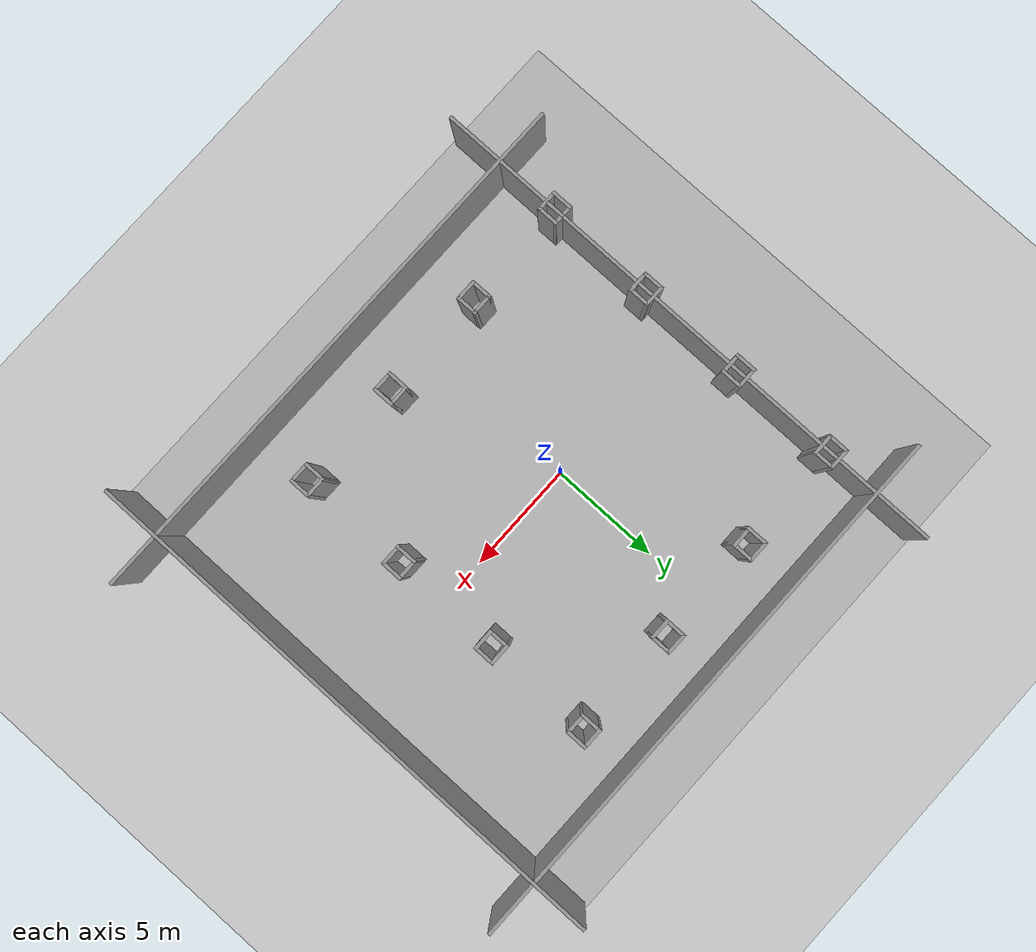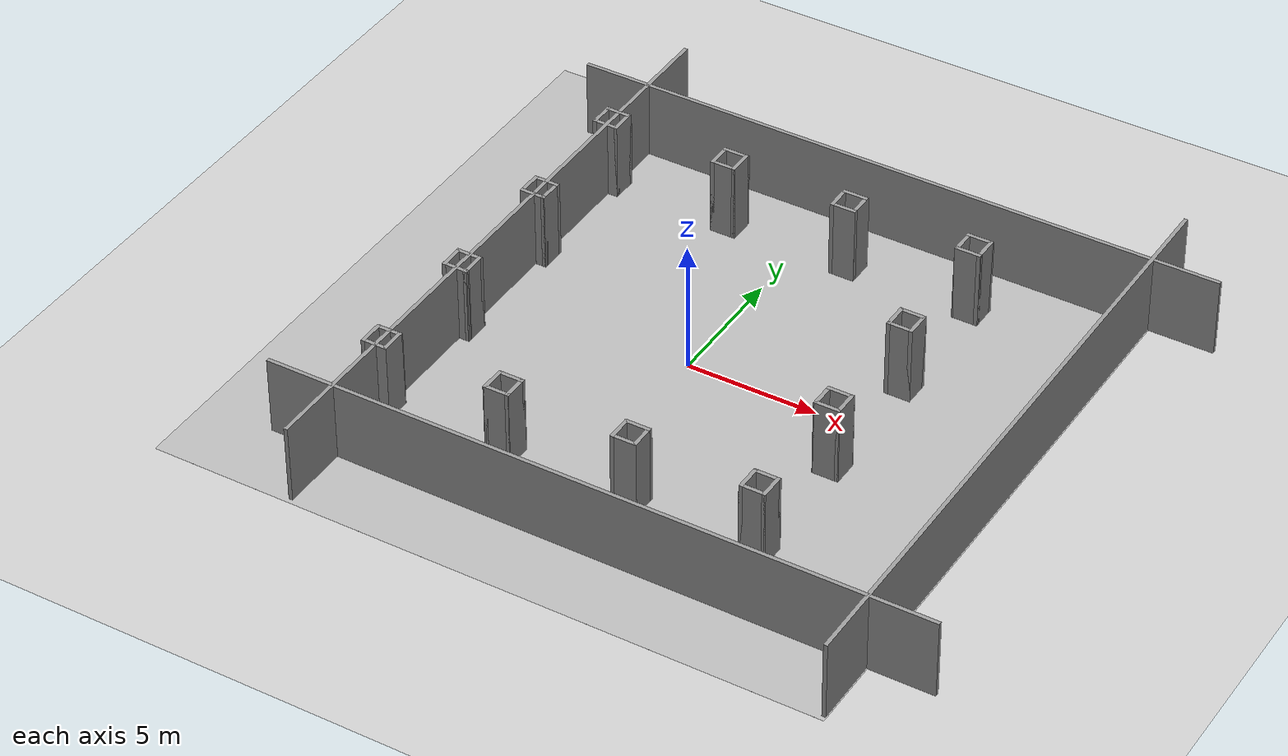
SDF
<sdf version="1.6">
 <world name="default">
  <scene><shadows>0</shadows><ambient>0.4 0.4 0.4 1</ambient><background>0.7 0.7 0.7 1</background></scene>
  <light name="sun" type="directional">
   <cast_shadows>0</cast_shadows>
   <pose>0 0 5 0 -0 0</pose>
   <diffuse>0.8 0.8 0.8 1</diffuse>
   <specular>0.1 0.1 0.1 1</specular>
   <attenuation>
    <range>1000</range>
    <constant>0.9</constant>
    <linear>0.01</linear>
    <quadratic>0.001</quadratic>
   </attenuation>
   <direction>-0.5 0.5 -1</direction>
  </light>
  <physics name="default_physics" default="0" type="ode">
   <max_step_size>0.001</max_step_size>
   <real_time_factor>1</real_time_factor>
   <real_time_update_rate>1000</real_time_update_rate>
  </physics>
  <scene><ambient>0.4 0.4 0.4 1</ambient><background>0.7 0.7 0.7 1</background><shadows>1</shadows></scene>
  <plugin name="ros_interface_plugin" filename="librotors_gazebo_ros_interface_plugin.so"/>
  <plugin name="gazebo_ros_state" filename="libgazebo_ros_state.so"/>
  <spherical_coordinates>
   <surface_model>EARTH_WGS84</surface_model>
   <latitude_deg>0</latitude_deg>
   <longitude_deg>0</longitude_deg>
   <elevation>0</elevation>
   <heading_deg>0</heading_deg>
  </spherical_coordinates>
  <model name="ground_plane">
   <static>1</static>
   <link name="link">
    <collision name="collision">
     <geometry><plane><normal>0 0 1</normal><size>100 100</size></plane></geometry>
     <surface><friction><ode><mu>1</mu><mu2>1</mu2></ode></friction></surface>
    </collision>
    <visual name="visual">
     <cast_shadows>0</cast_shadows>
     <geometry><plane><normal>0 0 1</normal><size>100 100</size></plane></geometry>
     <material>
      <script><uri>file://media/materials/scripts/gazebo.material</uri><name>Gazebo/Grey</name></script>
     </material>
    </visual>
    <velocity_decay><linear>0</linear><angular>0</angular></velocity_decay>
   </link>
  </model>
  <gravity>0 0 0</gravity>
  <magnetic_field>6e-06 2.3e-05 -4.2e-05</magnetic_field>
  <atmosphere type="adiabatic"/>
  <model name="Floor_room">
   <link name="main">
    <pose>0 0 0.01 0 -0 0</pose>
    <collision name="main_Collision">
     <geometry><box><size>25.5536 25.5536 0.000328</size></box></geometry>
    </collision>
    <visual name="main_Visual">
     <geometry><box><size>25.5536 25.5536 0.000328</size></box></geometry>
     <material>
      <script>
       <uri>model://Floor_room/materials/scripts</uri>
       <uri>model://Floor_room/materials/textures</uri>
       <name>floor_room</name>
      </script>
     </material>
    </visual>
   </link>
   <static>1</static>
   <pose>-0.165528 -0.09313 0.001198 0 -0 0</pose>
  </model>
  <model name="exterior_walls">
   <pose>2.466 -0.083501 0 0 -0 0</pose>
   <link name="Wall_32">
    <collision name="Wall_32_Collision">
     <geometry><box><size>25.2 0.15 3</size></box></geometry>
     <pose>0 0 1.5 0 -0 0</pose>
    </collision>
    <visual name="Wall_32_Visual">
     <pose>0 0 1.5 0 -0 0</pose>
     <geometry><box><size>25.2 0.15 3</size></box></geometry>
     <material>
      <script><uri>file://media/materials/scripts/gazebo.material</uri><name>Gazebo/Grey</name></script>
      <ambient>1 1 1 1</ambient>
     </material>
     <meta><layer>0</layer></meta>
    </visual>
    <pose>10.034 -0.018499 0 0 -0 1.5708</pose>
   </link>
   <link name="Wall_34">
    <collision name="Wall_34_Collision">
     <geometry><box><size>25.2 0.15 3</size></box></geometry>
     <pose>0 0 1.5 0 -0 0</pose>
    </collision>
    <visual name="Wall_34_Visual">
     <pose>0 0 1.5 0 -0 0</pose>
     <geometry><box><size>25.2 0.15 3</size></box></geometry>
     <material>
      <script><uri>file://media/materials/scripts/gazebo.material</uri><name>Gazebo/Grey</name></script>
      <ambient>1 1 1 1</ambient>
     </material>
     <meta><layer>0</layer></meta>
    </visual>
    <pose>-10.037 -0.014499 0 0 -0 1.5708</pose>
   </link>
   <link name="Wall_36">
    <collision name="Wall_36_Collision">
     <geometry><box><size>25.2 0.15 3</size></box></geometry>
     <pose>0 0 1.5 0 -0 0</pose>
    </collision>
    <visual name="Wall_36_Visual">
     <pose>0 0 1.5 0 -0 0</pose>
     <geometry><box><size>25.2 0.15 3</size></box></geometry>
     <material>
      <script><uri>file://media/materials/scripts/gazebo.material</uri><name>Gazebo/Grey</name></script>
      <ambient>1 1 1 1</ambient>
     </material>
     <meta><layer>0</layer></meta>
    </visual>
    <pose>-0 9.9435 0 0 -0 0</pose>
   </link>
   <link name="Wall_4">
    <collision name="Wall_4_Collision">
     <geometry><box><size>25.2 0.15 3</size></box></geometry>
     <pose>0 0 1.5 0 -0 0</pose>
    </collision>
    <visual name="Wall_4_Visual">
     <pose>0 0 1.5 0 -0 0</pose>
     <geometry><box><size>25.2 0.15 3</size></box></geometry>
     <material>
      <script><uri>file://media/materials/scripts/gazebo.material</uri><name>Gazebo/Grey</name></script>
      <ambient>1 1 1 1</ambient>
     </material>
     <meta><layer>0</layer></meta>
    </visual>
    <pose>-0.031 -9.9435 0 0 -0 0</pose>
   </link>
   <static>1</static>
  </model>
  <model name="pillar_walls">
   <pose>-0.33802 0.1855 0 0 -0 0</pose>
   <link name="Wall_101">
    <collision name="Wall_101_Collision">
     <geometry><box><size>1 0.15 3</size></box></geometry>
     <pose>0 0 1.5 0 -0 0</pose>
    </collision>
    <visual name="Wall_101_Visual">
     <pose>0 0 1.5 0 -0 0</pose>
     <geometry><box><size>1 0.15 3</size></box></geometry>
     <material>
      <script><uri>file://media/materials/scripts/gazebo.material</uri><name>Gazebo/Grey</name></script>
      <ambient>1 1 1 1</ambient>
     </material>
     <meta><layer>0</layer></meta>
    </visual>
    <pose>6.83802 2.4525 0 0 -0 -1.5708</pose>
   </link>
   <link name="Wall_102">
    <collision name="Wall_102_Collision">
     <geometry><box><size>1 0.15 3</size></box></geometry>
     <pose>0 0 1.5 0 -0 0</pose>
    </collision>
    <visual name="Wall_102_Visual">
     <pose>0 0 1.5 0 -0 0</pose>
     <geometry><box><size>1 0.15 3</size></box></geometry>
     <material>
      <script><uri>file://media/materials/scripts/gazebo.material</uri><name>Gazebo/Grey</name></script>
      <ambient>1 1 1 1</ambient>
     </material>
     <meta><layer>0</layer></meta>
    </visual>
    <pose>7.26302 2.0275 0 0 -0 0</pose>
   </link>
   <link name="Wall_103">
    <collision name="Wall_103_Collision">
     <geometry><box><size>1 0.15 3</size></box></geometry>
     <pose>0 0 1.5 0 -0 0</pose>
    </collision>
    <visual name="Wall_103_Visual">
     <pose>0 0 1.5 0 -0 0</pose>
     <geometry><box><size>1 0.15 3</size></box></geometry>
     <material>
      <script><uri>file://media/materials/scripts/gazebo.material</uri><name>Gazebo/Grey</name></script>
      <ambient>1 1 1 1</ambient>
     </material>
     <meta><layer>0</layer></meta>
    </visual>
    <pose>7.68802 2.4525 0 0 -0 1.5708</pose>
   </link>
   <link name="Wall_107">
    <collision name="Wall_107_Collision">
     <geometry><box><size>1 0.15 3</size></box></geometry>
     <pose>0 0 1.5 0 -0 0</pose>
    </collision>
    <visual name="Wall_107_Visual">
     <pose>0 0 1.5 0 -0 0</pose>
     <geometry><box><size>1 0.15 3</size></box></geometry>
     <material>
      <script><uri>file://media/materials/scripts/gazebo.material</uri><name>Gazebo/Grey</name></script>
      <ambient>1 1 1 1</ambient>
     </material>
     <meta><layer>0</layer></meta>
    </visual>
    <pose>-7.68398 -2.4265 0 0 -0 -1.5708</pose>
   </link>
   <link name="Wall_125">
    <collision name="Wall_125_Collision">
     <geometry><box><size>1 0.15 3</size></box></geometry>
     <pose>0 0 1.5 0 -0 0</pose>
    </collision>
    <visual name="Wall_125_Visual">
     <pose>0 0 1.5 0 -0 0</pose>
     <geometry><box><size>1 0.15 3</size></box></geometry>
     <material>
      <script><uri>file://media/materials/scripts/gazebo.material</uri><name>Gazebo/Grey</name></script>
      <ambient>1 1 1 1</ambient>
     </material>
     <meta><layer>0</layer></meta>
    </visual>
    <pose>6.81502 -2.4265 0 0 -0 -1.5708</pose>
   </link>
   <link name="Wall_126">
    <collision name="Wall_126_Collision">
     <geometry><box><size>1 0.15 3</size></box></geometry>
     <pose>0 0 1.5 0 -0 0</pose>
    </collision>
    <visual name="Wall_126_Visual">
     <pose>0 0 1.5 0 -0 0</pose>
     <geometry><box><size>1 0.15 3</size></box></geometry>
     <material>
      <script><uri>file://media/materials/scripts/gazebo.material</uri><name>Gazebo/Grey</name></script>
      <ambient>1 1 1 1</ambient>
     </material>
     <meta><layer>0</layer></meta>
    </visual>
    <pose>7.24002 -2.8515 0 0 -0 0</pose>
   </link>
   <link name="Wall_127">
    <collision name="Wall_127_Collision">
     <geometry><box><size>1 0.15 3</size></box></geometry>
     <pose>0 0 1.5 0 -0 0</pose>
    </collision>
    <visual name="Wall_127_Visual">
     <pose>0 0 1.5 0 -0 0</pose>
     <geometry><box><size>1 0.15 3</size></box></geometry>
     <material>
      <script><uri>file://media/materials/scripts/gazebo.material</uri><name>Gazebo/Grey</name></script>
      <ambient>1 1 1 1</ambient>
     </material>
     <meta><layer>0</layer></meta>
    </visual>
    <pose>7.66502 -2.4265 0 0 -0 1.5708</pose>
   </link>
   <link name="Wall_131">
    <collision name="Wall_131_Collision">
     <geometry><box><size>1 0.15 3</size></box></geometry>
     <pose>0 0 1.5 0 -0 0</pose>
    </collision>
    <visual name="Wall_131_Visual">
     <pose>0 0 1.5 0 -0 0</pose>
     <geometry><box><size>1 0.15 3</size></box></geometry>
     <material>
      <script><uri>file://media/materials/scripts/gazebo.material</uri><name>Gazebo/Grey</name></script>
      <ambient>1 1 1 1</ambient>
     </material>
     <meta><layer>0</layer></meta>
    </visual>
    <pose>-7.69298 -7.2895 0 0 -0 -1.5708</pose>
   </link>
   <link name="Wall_132">
    <collision name="Wall_132_Collision">
     <geometry><box><size>1 0.15 3</size></box></geometry>
     <pose>0 0 1.5 0 -0 0</pose>
    </collision>
    <visual name="Wall_132_Visual">
     <pose>0 0 1.5 0 -0 0</pose>
     <geometry><box><size>1 0.15 3</size></box></geometry>
     <material>
      <script><uri>file://media/materials/scripts/gazebo.material</uri><name>Gazebo/Grey</name></script>
      <ambient>1 1 1 1</ambient>
     </material>
     <meta><layer>0</layer></meta>
    </visual>
    <pose>-7.26798 -7.7145 0 0 -0 0</pose>
   </link>
   <link name="Wall_133">
    <collision name="Wall_133_Collision">
     <geometry><box><size>1 0.15 3</size></box></geometry>
     <pose>0 0 1.5 0 -0 0</pose>
    </collision>
    <visual name="Wall_133_Visual">
     <pose>0 0 1.5 0 -0 0</pose>
     <geometry><box><size>1 0.15 3</size></box></geometry>
     <material>
      <script><uri>file://media/materials/scripts/gazebo.material</uri><name>Gazebo/Grey</name></script>
      <ambient>1 1 1 1</ambient>
     </material>
     <meta><layer>0</layer></meta>
    </visual>
    <pose>-6.84298 -7.2895 0 0 -0 1.5708</pose>
   </link>
   <link name="Wall_137">
    <collision name="Wall_137_Collision">
     <geometry><box><size>1 0.15 3</size></box></geometry>
     <pose>0 0 1.5 0 -0 0</pose>
    </collision>
    <visual name="Wall_137_Visual">
     <pose>0 0 1.5 0 -0 0</pose>
     <geometry><box><size>1 0.15 3</size></box></geometry>
     <material>
      <script><uri>file://media/materials/scripts/gazebo.material</uri><name>Gazebo/Grey</name></script>
      <ambient>1 1 1 1</ambient>
     </material>
     <meta><layer>0</layer></meta>
    </visual>
    <pose>-2.88098 -7.2705 0 0 -0 -1.5708</pose>
   </link>
   <link name="Wall_138">
    <collision name="Wall_138_Collision">
     <geometry><box><size>1 0.15 3</size></box></geometry>
     <pose>0 0 1.5 0 -0 0</pose>
    </collision>
    <visual name="Wall_138_Visual">
     <pose>0 0 1.5 0 -0 0</pose>
     <geometry><box><size>1 0.15 3</size></box></geometry>
     <material>
      <script><uri>file://media/materials/scripts/gazebo.material</uri><name>Gazebo/Grey</name></script>
      <ambient>1 1 1 1</ambient>
     </material>
     <meta><layer>0</layer></meta>
    </visual>
    <pose>-2.45598 -7.6955 0 0 -0 0</pose>
   </link>
   <link name="Wall_139">
    <collision name="Wall_139_Collision">
     <geometry><box><size>1 0.15 3</size></box></geometry>
     <pose>0 0 1.5 0 -0 0</pose>
    </collision>
    <visual name="Wall_139_Visual">
     <pose>0 0 1.5 0 -0 0</pose>
     <geometry><box><size>1 0.15 3</size></box></geometry>
     <material>
      <script><uri>file://media/materials/scripts/gazebo.material</uri><name>Gazebo/Grey</name></script>
      <ambient>1 1 1 1</ambient>
     </material>
     <meta><layer>0</layer></meta>
    </visual>
    <pose>-2.03098 -7.2705 0 0 -0 1.5708</pose>
   </link>
   <link name="Wall_143">
    <collision name="Wall_143_Collision">
     <geometry><box><size>1 0.15 3</size></box></geometry>
     <pose>0 0 1.5 0 -0 0</pose>
    </collision>
    <visual name="Wall_143_Visual">
     <pose>0 0 1.5 0 -0 0</pose>
     <geometry><box><size>1 0.15 3</size></box></geometry>
     <material>
      <script><uri>file://media/materials/scripts/gazebo.material</uri><name>Gazebo/Grey</name></script>
      <ambient>1 1 1 1</ambient>
     </material>
     <meta><layer>0</layer></meta>
    </visual>
    <pose>2.00602 -7.2705 0 0 -0 -1.5708</pose>
   </link>
   <link name="Wall_144">
    <collision name="Wall_144_Collision">
     <geometry><box><size>1 0.15 3</size></box></geometry>
     <pose>0 0 1.5 0 -0 0</pose>
    </collision>
    <visual name="Wall_144_Visual">
     <pose>0 0 1.5 0 -0 0</pose>
     <geometry><box><size>1 0.15 3</size></box></geometry>
     <material>
      <script><uri>file://media/materials/scripts/gazebo.material</uri><name>Gazebo/Grey</name></script>
      <ambient>1 1 1 1</ambient>
     </material>
     <meta><layer>0</layer></meta>
    </visual>
    <pose>2.43102 -7.6955 0 0 -0 0</pose>
   </link>
   <link name="Wall_145">
    <collision name="Wall_145_Collision">
     <geometry><box><size>1 0.15 3</size></box></geometry>
     <pose>0 0 1.5 0 -0 0</pose>
    </collision>
    <visual name="Wall_145_Visual">
     <pose>0 0 1.5 0 -0 0</pose>
     <geometry><box><size>1 0.15 3</size></box></geometry>
     <material>
      <script><uri>file://media/materials/scripts/gazebo.material</uri><name>Gazebo/Grey</name></script>
      <ambient>1 1 1 1</ambient>
     </material>
     <meta><layer>0</layer></meta>
    </visual>
    <pose>2.85602 -7.2705 0 0 -0 1.5708</pose>
   </link>
   <link name="Wall_149">
    <collision name="Wall_149_Collision">
     <geometry><box><size>1 0.15 3</size></box></geometry>
     <pose>0 0 1.5 0 -0 0</pose>
    </collision>
    <visual name="Wall_149_Visual">
     <pose>0 0 1.5 0 -0 0</pose>
     <geometry><box><size>1 0.15 3</size></box></geometry>
     <material>
      <script><uri>file://media/materials/scripts/gazebo.material</uri><name>Gazebo/Grey</name></script>
      <ambient>1 1 1 1</ambient>
     </material>
     <meta><layer>0</layer></meta>
    </visual>
    <pose>6.83702 -7.2705 0 0 -0 -1.5708</pose>
   </link>
   <link name="Wall_150">
    <collision name="Wall_150_Collision">
     <geometry><box><size>1 0.15 3</size></box></geometry>
     <pose>0 0 1.5 0 -0 0</pose>
    </collision>
    <visual name="Wall_150_Visual">
     <pose>0 0 1.5 0 -0 0</pose>
     <geometry><box><size>1 0.15 3</size></box></geometry>
     <material>
      <script><uri>file://media/materials/scripts/gazebo.material</uri><name>Gazebo/Grey</name></script>
      <ambient>1 1 1 1</ambient>
     </material>
     <meta><layer>0</layer></meta>
    </visual>
    <pose>7.26202 -7.6955 0 0 -0 0</pose>
   </link>
   <link name="Wall_151">
    <collision name="Wall_151_Collision">
     <geometry><box><size>1 0.15 3</size></box></geometry>
     <pose>0 0 1.5 0 -0 0</pose>
    </collision>
    <visual name="Wall_151_Visual">
     <pose>0 0 1.5 0 -0 0</pose>
     <geometry><box><size>1 0.15 3</size></box></geometry>
     <material>
      <script><uri>file://media/materials/scripts/gazebo.material</uri><name>Gazebo/Grey</name></script>
      <ambient>1 1 1 1</ambient>
     </material>
     <meta><layer>0</layer></meta>
    </visual>
    <pose>7.68702 -7.2705 0 0 -0 1.5708</pose>
   </link>
   <link name="Wall_153">
    <collision name="Wall_153_Collision">
     <geometry><box><size>1 0.15 3</size></box></geometry>
     <pose>0 0 1.5 0 -0 0</pose>
    </collision>
    <visual name="Wall_153_Visual">
     <pose>0 0 1.5 0 -0 0</pose>
     <geometry><box><size>1 0.15 3</size></box></geometry>
     <material>
      <script><uri>file://media/materials/scripts/gazebo.material</uri><name>Gazebo/Grey</name></script>
      <ambient>1 1 1 1</ambient>
     </material>
     <meta><layer>0</layer></meta>
    </visual>
    <pose>-2.42698 7.7145 0 0 -0 0</pose>
   </link>
   <link name="Wall_158">
    <collision name="Wall_158_Collision">
     <geometry><box><size>1 0.15 3</size></box></geometry>
     <pose>0 0 1.5 0 -0 0</pose>
    </collision>
    <visual name="Wall_158_Visual">
     <pose>0 0 1.5 0 -0 0</pose>
     <geometry><box><size>1 0.15 3</size></box></geometry>
     <material>
      <script><uri>file://media/materials/scripts/gazebo.material</uri><name>Gazebo/Grey</name></script>
      <ambient>1 1 1 1</ambient>
     </material>
     <meta><layer>0</layer></meta>
    </visual>
    <pose>7.26802 7.6925 0 0 -0 3.14159</pose>
   </link>
   <link name="Wall_159">
    <collision name="Wall_159_Collision">
     <geometry><box><size>1 0.15 3</size></box></geometry>
     <pose>0 0 1.5 0 -0 0</pose>
    </collision>
    <visual name="Wall_159_Visual">
     <pose>0 0 1.5 0 -0 0</pose>
     <geometry><box><size>1 0.15 3</size></box></geometry>
     <material>
      <script><uri>file://media/materials/scripts/gazebo.material</uri><name>Gazebo/Grey</name></script>
      <ambient>1 1 1 1</ambient>
     </material>
     <meta><layer>0</layer></meta>
    </visual>
    <pose>6.84302 7.2675 0 0 -0 -1.5708</pose>
   </link>
   <link name="Wall_161">
    <collision name="Wall_161_Collision">
     <geometry><box><size>1 0.15 3</size></box></geometry>
     <pose>0 0 1.5 0 -0 0</pose>
    </collision>
    <visual name="Wall_161_Visual">
     <pose>0 0 1.5 0 -0 0</pose>
     <geometry><box><size>1 0.15 3</size></box></geometry>
     <material>
      <script><uri>file://media/materials/scripts/gazebo.material</uri><name>Gazebo/Grey</name></script>
      <ambient>1 1 1 1</ambient>
     </material>
     <meta><layer>0</layer></meta>
    </visual>
    <pose>-7.25198 2.8855 0 0 -0 0</pose>
   </link>
   <link name="Wall_167">
    <collision name="Wall_167_Collision">
     <geometry><box><size>1 0.15 3</size></box></geometry>
     <pose>0 0 1.5 0 -0 0</pose>
    </collision>
    <visual name="Wall_167_Visual">
     <pose>0 0 1.5 0 -0 0</pose>
     <geometry><box><size>1 0.15 3</size></box></geometry>
     <material>
      <script><uri>file://media/materials/scripts/gazebo.material</uri><name>Gazebo/Grey</name></script>
      <ambient>1 1 1 1</ambient>
     </material>
     <meta><layer>0</layer></meta>
    </visual>
    <pose>7.26302 2.8775 0 0 -0 0</pose>
   </link>
   <link name="Wall_177">
    <collision name="Wall_177_Collision">
     <geometry><box><size>1 0.15 3</size></box></geometry>
     <pose>0 0 1.5 0 -0 0</pose>
    </collision>
    <visual name="Wall_177_Visual">
     <pose>0 0 1.5 0 -0 0</pose>
     <geometry><box><size>1 0.15 3</size></box></geometry>
     <material>
      <script><uri>file://media/materials/scripts/gazebo.material</uri><name>Gazebo/Grey</name></script>
      <ambient>1 1 1 1</ambient>
     </material>
     <meta><layer>0</layer></meta>
    </visual>
    <pose>7.24002 -2.0015 0 0 -0 0</pose>
   </link>
   <link name="Wall_179">
    <collision name="Wall_179_Collision">
     <geometry><box><size>1 0.15 3</size></box></geometry>
     <pose>0 0 1.5 0 -0 0</pose>
    </collision>
    <visual name="Wall_179_Visual">
     <pose>0 0 1.5 0 -0 0</pose>
     <geometry><box><size>1 0.15 3</size></box></geometry>
     <material>
      <script><uri>file://media/materials/scripts/gazebo.material</uri><name>Gazebo/Grey</name></script>
      <ambient>1 1 1 1</ambient>
     </material>
     <meta><layer>0</layer></meta>
    </visual>
    <pose>7.26202 -6.8455 0 0 -0 0</pose>
   </link>
   <link name="Wall_181">
    <collision name="Wall_181_Collision">
     <geometry><box><size>1 0.15 3</size></box></geometry>
     <pose>0 0 1.5 0 -0 0</pose>
    </collision>
    <visual name="Wall_181_Visual">
     <pose>0 0 1.5 0 -0 0</pose>
     <geometry><box><size>1 0.15 3</size></box></geometry>
     <material>
      <script><uri>file://media/materials/scripts/gazebo.material</uri><name>Gazebo/Grey</name></script>
      <ambient>1 1 1 1</ambient>
     </material>
     <meta><layer>0</layer></meta>
    </visual>
    <pose>2.43102 -6.8455 0 0 -0 0</pose>
   </link>
   <link name="Wall_183">
    <collision name="Wall_183_Collision">
     <geometry><box><size>1 0.15 3</size></box></geometry>
     <pose>0 0 1.5 0 -0 0</pose>
    </collision>
    <visual name="Wall_183_Visual">
     <pose>0 0 1.5 0 -0 0</pose>
     <geometry><box><size>1 0.15 3</size></box></geometry>
     <material>
      <script><uri>file://media/materials/scripts/gazebo.material</uri><name>Gazebo/Grey</name></script>
      <ambient>1 1 1 1</ambient>
     </material>
     <meta><layer>0</layer></meta>
    </visual>
    <pose>-2.45598 -6.8455 0 0 -0 0</pose>
   </link>
   <link name="Wall_185">
    <collision name="Wall_185_Collision">
     <geometry><box><size>1 0.15 3</size></box></geometry>
     <pose>0 0 1.5 0 -0 0</pose>
    </collision>
    <visual name="Wall_185_Visual">
     <pose>0 0 1.5 0 -0 0</pose>
     <geometry><box><size>1 0.15 3</size></box></geometry>
     <material>
      <script><uri>file://media/materials/scripts/gazebo.material</uri><name>Gazebo/Grey</name></script>
      <ambient>1 1 1 1</ambient>
     </material>
     <meta><layer>0</layer></meta>
    </visual>
    <pose>-7.26798 -6.8645 0 0 -0 0</pose>
   </link>
   <link name="Wall_187">
    <collision name="Wall_187_Collision">
     <geometry><box><size>1 0.15 3</size></box></geometry>
     <pose>0 0 1.5 0 -0 0</pose>
    </collision>
    <visual name="Wall_187_Visual">
     <pose>0 0 1.5 0 -0 0</pose>
     <geometry><box><size>1 0.15 3</size></box></geometry>
     <material>
      <script><uri>file://media/materials/scripts/gazebo.material</uri><name>Gazebo/Grey</name></script>
      <ambient>1 1 1 1</ambient>
     </material>
     <meta><layer>0</layer></meta>
    </visual>
    <pose>-7.25898 -2.8515 0 0 -0 0</pose>
   </link>
   <link name="Wall_188">
    <collision name="Wall_188_Collision">
     <geometry><box><size>1 0.15 3</size></box></geometry>
     <pose>0 0 1.5 0 -0 0</pose>
    </collision>
    <visual name="Wall_188_Visual">
     <pose>0 0 1.5 0 -0 0</pose>
     <geometry><box><size>1 0.15 3</size></box></geometry>
     <material>
      <script><uri>file://media/materials/scripts/gazebo.material</uri><name>Gazebo/Grey</name></script>
      <ambient>1 1 1 1</ambient>
     </material>
     <meta><layer>0</layer></meta>
    </visual>
    <pose>-6.83398 -2.4265 0 0 -0 1.5708</pose>
   </link>
   <link name="Wall_189">
    <collision name="Wall_189_Collision">
     <geometry><box><size>1 0.15 3</size></box></geometry>
     <pose>0 0 1.5 0 -0 0</pose>
    </collision>
    <visual name="Wall_189_Visual">
     <pose>0 0 1.5 0 -0 0</pose>
     <geometry><box><size>1 0.15 3</size></box></geometry>
     <material>
      <script><uri>file://media/materials/scripts/gazebo.material</uri><name>Gazebo/Grey</name></script>
      <ambient>1 1 1 1</ambient>
     </material>
     <meta><layer>0</layer></meta>
    </visual>
    <pose>-7.25898 -2.0015 0 0 -0 3.14159</pose>
   </link>
   <link name="Wall_194">
    <collision name="Wall_194_Collision">
     <geometry><box><size>1 0.15 3</size></box></geometry>
     <pose>0 0 1.5 0 -0 0</pose>
    </collision>
    <visual name="Wall_194_Visual">
     <pose>0 0 1.5 0 -0 0</pose>
     <geometry><box><size>1 0.15 3</size></box></geometry>
     <material>
      <script><uri>file://media/materials/scripts/gazebo.material</uri><name>Gazebo/Grey</name></script>
      <ambient>1 1 1 1</ambient>
     </material>
     <meta><layer>0</layer></meta>
    </visual>
    <pose>2.38302 7.7035 0 0 -0 0</pose>
   </link>
   <link name="Wall_195">
    <collision name="Wall_195_Collision">
     <geometry><box><size>1 0.15 3</size></box></geometry>
     <pose>0 0 1.5 0 -0 0</pose>
    </collision>
    <visual name="Wall_195_Visual">
     <pose>0 0 1.5 0 -0 0</pose>
     <geometry><box><size>1 0.15 3</size></box></geometry>
     <material>
      <script><uri>file://media/materials/scripts/gazebo.material</uri><name>Gazebo/Grey</name></script>
      <ambient>1 1 1 1</ambient>
     </material>
     <meta><layer>0</layer></meta>
    </visual>
    <pose>2.80802 7.2785 0 0 -0 -1.5708</pose>
   </link>
   <link name="Wall_196">
    <collision name="Wall_196_Collision">
     <geometry><box><size>1 0.15 3</size></box></geometry>
     <pose>0 0 1.5 0 -0 0</pose>
    </collision>
    <visual name="Wall_196_Visual">
     <pose>0 0 1.5 0 -0 0</pose>
     <geometry><box><size>1 0.15 3</size></box></geometry>
     <material>
      <script><uri>file://media/materials/scripts/gazebo.material</uri><name>Gazebo/Grey</name></script>
      <ambient>1 1 1 1</ambient>
     </material>
     <meta><layer>0</layer></meta>
    </visual>
    <pose>2.38302 6.8535 0 0 -0 3.14159</pose>
   </link>
   <link name="Wall_51">
    <collision name="Wall_51_Collision">
     <geometry><box><size>0.5 0.15 2.5</size></box></geometry>
     <pose>0 0 1.25 0 -0 0</pose>
    </collision>
    <visual name="Wall_51_Visual">
     <pose>0 0 1.25 0 -0 0</pose>
     <geometry><box><size>0.5 0.15 2.5</size></box></geometry>
     <material>
      <script><uri>file://media/materials/scripts/gazebo.material</uri><name>Gazebo/Grey</name></script>
      <ambient>1 1 1 1</ambient>
     </material>
     <meta><layer>0</layer></meta>
    </visual>
    <pose>-7.51793 7.6927 0 0 -0 -3.14046</pose>
   </link>
   <link name="Wall_52">
    <collision name="Wall_52_Collision">
     <geometry><box><size>1 0.15 3</size></box></geometry>
     <pose>0 0 1.5 0 -0 0</pose>
    </collision>
    <visual name="Wall_52_Visual">
     <pose>0 0 1.5 0 -0 0</pose>
     <geometry><box><size>1 0.15 3</size></box></geometry>
     <material>
      <script><uri>file://media/materials/scripts/gazebo.material</uri><name>Gazebo/Grey</name></script>
      <ambient>1 1 1 1</ambient>
     </material>
     <meta><layer>0</layer></meta>
    </visual>
    <pose>-7.69298 7.2675 0 0 -0 -1.5708</pose>
   </link>
   <link name="Wall_53">
    <collision name="Wall_53_Collision">
     <geometry><box><size>1 0.15 3</size></box></geometry>
     <pose>0 0 1.5 0 -0 0</pose>
    </collision>
    <visual name="Wall_53_Visual">
     <pose>0 0 1.5 0 -0 0</pose>
     <geometry><box><size>1 0.15 3</size></box></geometry>
     <material>
      <script><uri>file://media/materials/scripts/gazebo.material</uri><name>Gazebo/Grey</name></script>
      <ambient>1 1 1 1</ambient>
     </material>
     <meta><layer>0</layer></meta>
    </visual>
    <pose>-7.26798 6.8425 0 0 -0 0</pose>
   </link>
   <link name="Wall_54">
    <collision name="Wall_54_Collision">
     <geometry><box><size>1 0.15 3</size></box></geometry>
     <pose>0 0 1.5 0 -0 0</pose>
    </collision>
    <visual name="Wall_54_Visual">
     <pose>0 0 1.5 0 -0 0</pose>
     <geometry><box><size>1 0.15 3</size></box></geometry>
     <material>
      <script><uri>file://media/materials/scripts/gazebo.material</uri><name>Gazebo/Grey</name></script>
      <ambient>1 1 1 1</ambient>
     </material>
     <meta><layer>0</layer></meta>
    </visual>
    <pose>-6.84298 7.2675 0 0 -0 1.5708</pose>
   </link>
   <link name="Wall_55">
    <collision name="Wall_55_Collision">
     <geometry><box><size>1 0.15 3</size></box></geometry>
     <pose>0 0 1.5 0 -0 0</pose>
    </collision>
    <visual name="Wall_55_Visual">
     <pose>0 0 1.5 0 -0 0</pose>
     <geometry><box><size>1 0.15 3</size></box></geometry>
     <material>
      <script><uri>file://media/materials/scripts/gazebo.material</uri><name>Gazebo/Grey</name></script>
      <ambient>1 1 1 1</ambient>
     </material>
     <meta><layer>0</layer></meta>
    </visual>
    <pose>-7.26798 7.6925 0 0 -0 3.14159</pose>
   </link>
   <link name="Wall_59">
    <collision name="Wall_59_Collision">
     <geometry><box><size>1 0.15 3</size></box></geometry>
     <pose>0 0 1.5 0 -0 0</pose>
    </collision>
    <visual name="Wall_59_Visual">
     <pose>0 0 1.5 0 -0 0</pose>
     <geometry><box><size>1 0.15 3</size></box></geometry>
     <material>
      <script><uri>file://media/materials/scripts/gazebo.material</uri><name>Gazebo/Grey</name></script>
      <ambient>1 1 1 1</ambient>
     </material>
     <meta><layer>0</layer></meta>
    </visual>
    <pose>-7.67698 2.4605 0 0 -0 -1.5708</pose>
   </link>
   <link name="Wall_60">
    <collision name="Wall_60_Collision">
     <geometry><box><size>1 0.15 3</size></box></geometry>
     <pose>0 0 1.5 0 -0 0</pose>
    </collision>
    <visual name="Wall_60_Visual">
     <pose>0 0 1.5 0 -0 0</pose>
     <geometry><box><size>1 0.15 3</size></box></geometry>
     <material>
      <script><uri>file://media/materials/scripts/gazebo.material</uri><name>Gazebo/Grey</name></script>
      <ambient>1 1 1 1</ambient>
     </material>
     <meta><layer>0</layer></meta>
    </visual>
    <pose>-7.25198 2.0355 0 0 -0 0</pose>
   </link>
   <link name="Wall_61">
    <collision name="Wall_61_Collision">
     <geometry><box><size>1 0.15 3</size></box></geometry>
     <pose>0 0 1.5 0 -0 0</pose>
    </collision>
    <visual name="Wall_61_Visual">
     <pose>0 0 1.5 0 -0 0</pose>
     <geometry><box><size>1 0.15 3</size></box></geometry>
     <material>
      <script><uri>file://media/materials/scripts/gazebo.material</uri><name>Gazebo/Grey</name></script>
      <ambient>1 1 1 1</ambient>
     </material>
     <meta><layer>0</layer></meta>
    </visual>
    <pose>-6.82698 2.4605 0 0 -0 1.5708</pose>
   </link>
   <link name="Wall_77">
    <collision name="Wall_77_Collision">
     <geometry><box><size>1 0.15 3</size></box></geometry>
     <pose>0 0 1.5 0 -0 0</pose>
    </collision>
    <visual name="Wall_77_Visual">
     <pose>0 0 1.5 0 -0 0</pose>
     <geometry><box><size>1 0.15 3</size></box></geometry>
     <material>
      <script><uri>file://media/materials/scripts/gazebo.material</uri><name>Gazebo/Grey</name></script>
      <ambient>1 1 1 1</ambient>
     </material>
     <meta><layer>0</layer></meta>
    </visual>
    <pose>-2.85198 7.2895 0 0 -0 -1.5708</pose>
   </link>
   <link name="Wall_78">
    <collision name="Wall_78_Collision">
     <geometry><box><size>1 0.15 3</size></box></geometry>
     <pose>0 0 1.5 0 -0 0</pose>
    </collision>
    <visual name="Wall_78_Visual">
     <pose>0 0 1.5 0 -0 0</pose>
     <geometry><box><size>1 0.15 3</size></box></geometry>
     <material>
      <script><uri>file://media/materials/scripts/gazebo.material</uri><name>Gazebo/Grey</name></script>
      <ambient>1 1 1 1</ambient>
     </material>
     <meta><layer>0</layer></meta>
    </visual>
    <pose>-2.42698 6.8645 0 0 -0 0</pose>
   </link>
   <link name="Wall_79">
    <collision name="Wall_79_Collision">
     <geometry><box><size>1 0.15 3</size></box></geometry>
     <pose>0 0 1.5 0 -0 0</pose>
    </collision>
    <visual name="Wall_79_Visual">
     <pose>0 0 1.5 0 -0 0</pose>
     <geometry><box><size>1 0.15 3</size></box></geometry>
     <material>
      <script><uri>file://media/materials/scripts/gazebo.material</uri><name>Gazebo/Grey</name></script>
      <ambient>1 1 1 1</ambient>
     </material>
     <meta><layer>0</layer></meta>
    </visual>
    <pose>-2.00198 7.2895 0 0 -0 1.5708</pose>
   </link>
   <link name="Wall_83">
    <collision name="Wall_83_Collision">
     <geometry><box><size>1 0.15 3</size></box></geometry>
     <pose>0 0 1.5 0 -0 0</pose>
    </collision>
    <visual name="Wall_83_Visual">
     <pose>0 0 1.5 0 -0 0</pose>
     <geometry><box><size>1 0.15 3</size></box></geometry>
     <material>
      <script><uri>file://media/materials/scripts/gazebo.material</uri><name>Gazebo/Grey</name></script>
      <ambient>1 1 1 1</ambient>
     </material>
     <meta><layer>0</layer></meta>
    </visual>
    <pose>1.95802 7.2785 0 0 -0 -1.5708</pose>
   </link>
   <link name="Wall_90">
    <collision name="Wall_90_Collision">
     <geometry><box><size>1 0.15 3</size></box></geometry>
     <pose>0 0 1.5 0 -0 0</pose>
    </collision>
    <visual name="Wall_90_Visual">
     <pose>0 0 1.5 0 -0 0</pose>
     <geometry><box><size>1 0.15 3</size></box></geometry>
     <material>
      <script><uri>file://media/materials/scripts/gazebo.material</uri><name>Gazebo/Grey</name></script>
      <ambient>1 1 1 1</ambient>
     </material>
     <meta><layer>0</layer></meta>
    </visual>
    <pose>7.26802 6.8425 0 0 -0 0</pose>
   </link>
   <link name="Wall_91">
    <collision name="Wall_91_Collision">
     <geometry><box><size>1 0.15 3</size></box></geometry>
     <pose>0 0 1.5 0 -0 0</pose>
    </collision>
    <visual name="Wall_91_Visual">
     <pose>0 0 1.5 0 -0 0</pose>
     <geometry><box><size>1 0.15 3</size></box></geometry>
     <material>
      <script><uri>file://media/materials/scripts/gazebo.material</uri><name>Gazebo/Grey</name></script>
      <ambient>1 1 1 1</ambient>
     </material>
     <meta><layer>0</layer></meta>
    </visual>
    <pose>7.69302 7.2675 0 0 -0 1.5708</pose>
   </link>
   <static>1</static>
  </model>
 </world>
</sdf>
